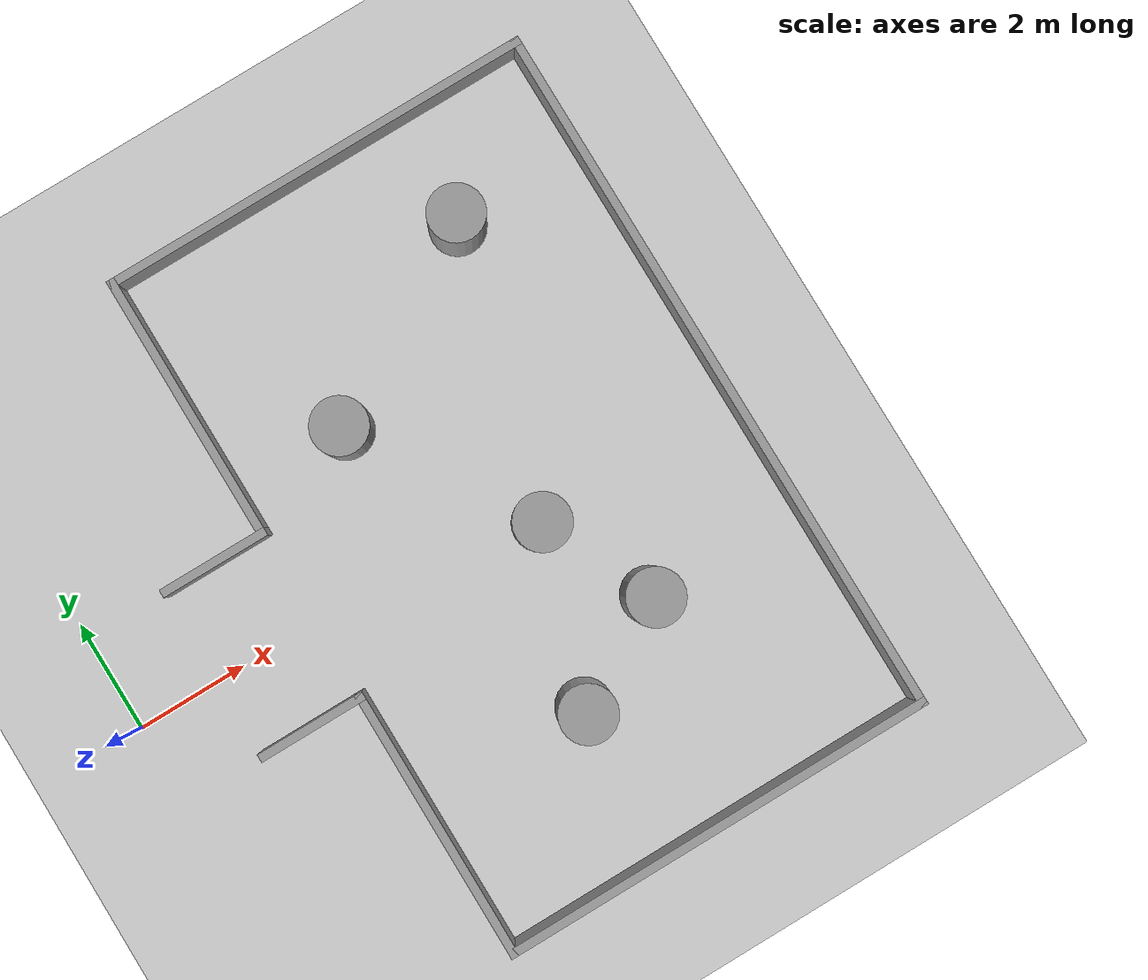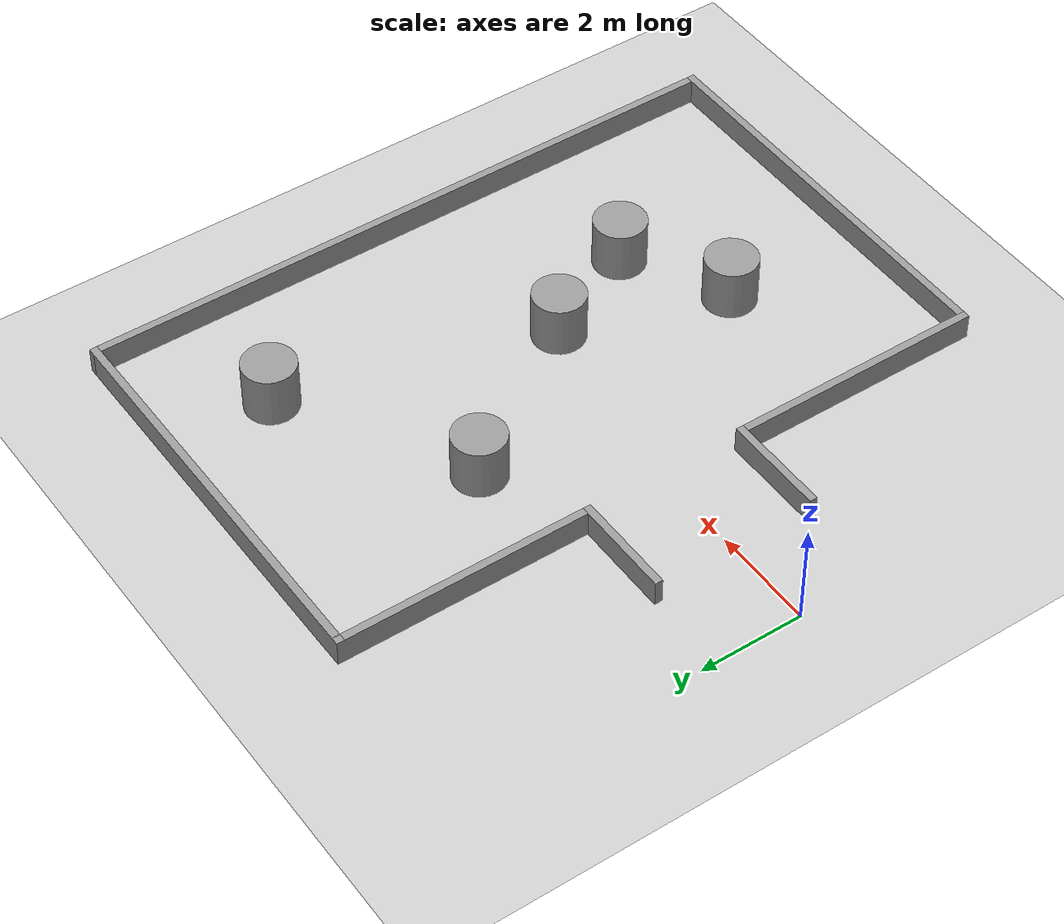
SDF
<sdf version="1.7">
 <world name="default">
  <light name="sun" type="directional">
   <pose>0 0 10 0 -0 0</pose>
   <diffuse>0.8 0.8 0.8 1</diffuse>
   <specular>0.2 0.2 0.2 1</specular>
   <attenuation>
    <range>1000</range>
    <constant>0.9</constant>
    <linear>0.01</linear>
    <quadratic>0.001</quadratic>
   </attenuation>
   <direction>-0.5 0.1 -0.9</direction>
   <spot><inner_angle>0</inner_angle><outer_angle>0</outer_angle><falloff>0</falloff></spot>
  </light>
  <model name="ground_plane">
   <static>1</static>
   <link name="link">
    <collision name="collision">
     <geometry><plane><normal>0 0 1</normal><size>100 100</size></plane></geometry>
     <surface>
      <contact><collide_bitmask>65535</collide_bitmask></contact>
      <friction><ode><mu>100</mu><mu2>50</mu2></ode></friction>
     </surface>
    </collision>
    <visual name="visual">
     <cast_shadows>0</cast_shadows>
     <geometry><plane><normal>0 0 1</normal><size>100 100</size></plane></geometry>
     <material>
      <script><uri>file://media/materials/scripts/gazebo.material</uri><name>Gazebo/Grey</name></script>
     </material>
    </visual>
   </link>
  </model>
  <gravity>0 0 -9.8</gravity>
  <magnetic_field>6e-06 2.3e-05 -4.2e-05</magnetic_field>
  <atmosphere type="adiabatic"/>
  <physics type="ode">
   <max_step_size>0.001</max_step_size>
   <real_time_factor>1</real_time_factor>
   <real_time_update_rate>1000</real_time_update_rate>
  </physics>
  <scene><ambient>0.4 0.4 0.4 1</ambient><background>0.7 0.7 0.7 1</background><shadows>1</shadows></scene>
  <audio><device>default</device></audio>
  <spherical_coordinates>
   <surface_model>EARTH_WGS84</surface_model>
   <latitude_deg>0</latitude_deg>
   <longitude_deg>0</longitude_deg>
   <elevation>0</elevation>
   <heading_deg>0</heading_deg>
  </spherical_coordinates>
  <model name="simple_environment">
   <pose>5.695 0.129 0 0 -0 0</pose>
   <link name="Wall_10">
    <collision name="Wall_10_Collision">
     <geometry><box><size>8 0.15 0.5</size></box></geometry>
     <pose>0 0 0.25 0 -0 0</pose>
    </collision>
    <visual name="Wall_10_Visual">
     <pose>0 0 0.25 0 -0 0</pose>
     <geometry><box><size>8 0.15 0.5</size></box></geometry>
     <material>
      <script><uri>file://media/materials/scripts/gazebo.material</uri><name>Gazebo/Grey</name></script>
      <ambient>1 1 1 1</ambient>
     </material>
     <meta><layer>0</layer></meta>
    </visual>
    <pose>1.695 -6.425 0 0 -0 0</pose>
   </link>
   <link name="Wall_12">
    <collision name="Wall_12_Collision">
     <geometry><box><size>13 0.15 0.5</size></box></geometry>
     <pose>0 0 0.25 0 -0 0</pose>
    </collision>
    <visual name="Wall_12_Visual">
     <pose>0 0 0.25 0 -0 0</pose>
     <geometry><box><size>13 0.15 0.5</size></box></geometry>
     <material>
      <script><uri>file://media/materials/scripts/gazebo.material</uri><name>Gazebo/Grey</name></script>
      <ambient>1 1 1 1</ambient>
     </material>
     <meta><layer>0</layer></meta>
    </visual>
    <pose>5.62 -0 0 0 -0 1.5708</pose>
   </link>
   <link name="Wall_20">
    <collision name="Wall_20_Collision">
     <geometry><box><size>7.99956 0.15 0.5</size></box></geometry>
     <pose>0 0 0.25 0 -0 0</pose>
    </collision>
    <visual name="Wall_20_Visual">
     <pose>0 0 0.25 0 -0 0</pose>
     <geometry><box><size>7.99956 0.15 0.5</size></box></geometry>
     <material>
      <script><uri>file://media/materials/scripts/gazebo.material</uri><name>Gazebo/Grey</name></script>
      <ambient>1 1 1 1</ambient>
     </material>
     <meta><layer>0</layer></meta>
    </visual>
    <pose>1.695 6.425 0 0 -0 3.14159</pose>
   </link>
   <link name="Wall_21">
    <collision name="Wall_21_Collision">
     <geometry><box><size>5 0.15 0.5</size></box></geometry>
     <pose>0 0 0.25 0 -0 0</pose>
    </collision>
    <visual name="Wall_21_Visual">
     <pose>0 0 0.25 0 -0 0</pose>
     <geometry><box><size>5 0.15 0.5</size></box></geometry>
     <material>
      <script><uri>file://media/materials/scripts/gazebo.material</uri><name>Gazebo/Grey</name></script>
      <ambient>1 1 1 1</ambient>
     </material>
     <meta><layer>0</layer></meta>
    </visual>
    <pose>-2.23 4 0 0 -0 -1.5708</pose>
   </link>
   <link name="Wall_22">
    <collision name="Wall_22_Collision">
     <geometry><box><size>2.00043 0.15 0.5</size></box></geometry>
     <pose>0 0 0.25 0 -0 0</pose>
    </collision>
    <visual name="Wall_22_Visual">
     <pose>0 0 0.25 0 -0 0</pose>
     <geometry><box><size>2.00043 0.15 0.5</size></box></geometry>
     <material>
      <script><uri>file://media/materials/scripts/gazebo.material</uri><name>Gazebo/Grey</name></script>
      <ambient>1 1 1 1</ambient>
     </material>
     <meta><layer>0</layer></meta>
    </visual>
    <pose>-3.155 1.575 0 0 -0 3.14159</pose>
   </link>
   <link name="Wall_8">
    <collision name="Wall_8_Collision">
     <geometry><box><size>2 0.15 0.5</size></box></geometry>
     <pose>0 0 0.25 0 -0 0</pose>
    </collision>
    <visual name="Wall_8_Visual">
     <pose>0 0 0.25 0 -0 0</pose>
     <geometry><box><size>2 0.15 0.5</size></box></geometry>
     <material>
      <script><uri>file://media/materials/scripts/gazebo.material</uri><name>Gazebo/Grey</name></script>
      <ambient>1 1 1 1</ambient>
     </material>
     <meta><layer>0</layer></meta>
    </visual>
    <pose>-3.155 -1.575 0 0 -0 0</pose>
   </link>
   <link name="Wall_9">
    <collision name="Wall_9_Collision">
     <geometry><box><size>5 0.15 0.5</size></box></geometry>
     <pose>0 0 0.25 0 -0 0</pose>
    </collision>
    <visual name="Wall_9_Visual">
     <pose>0 0 0.25 0 -0 0</pose>
     <geometry><box><size>5 0.15 0.5</size></box></geometry>
     <material>
      <script><uri>file://media/materials/scripts/gazebo.material</uri><name>Gazebo/Grey</name></script>
      <ambient>1 1 1 1</ambient>
     </material>
     <meta><layer>0</layer></meta>
    </visual>
    <pose>-2.23 -4 0 0 -0 -1.5708</pose>
   </link>
   <static>1</static>
  </model>
  <model name="unit_cylinder">
   <pose>8.91277 4.48992 0.499992 -3e-06 -4e-06 -0</pose>
   <link name="link">
    <inertial>
     <mass>1</mass>
     <inertia><ixx>0.145833</ixx><ixy>0</ixy><ixz>0</ixz><iyy>0.145833</iyy><iyz>0</iyz><izz>0.125</izz></inertia>
    </inertial>
    <collision name="collision">
     <geometry><cylinder><radius>0.5</radius><length>1</length></cylinder></geometry>
    </collision>
    <visual name="visual">
     <geometry><cylinder><radius>0.5</radius><length>1</length></cylinder></geometry>
     <material>
      <script><name>Gazebo/Grey</name><uri>file://media/materials/scripts/gazebo.material</uri></script>
     </material>
    </visual>
   </link>
  </model>
  <model name="unit_cylinder_0">
   <pose>5.49903 2.49856 0.499993 -3e-06 -3e-06 0</pose>
   <link name="link">
    <inertial>
     <mass>1</mass>
     <inertia><ixx>0.145833</ixx><ixy>0</ixy><ixz>0</ixz><iyy>0.145833</iyy><iyz>0</iyz><izz>0.125</izz></inertia>
    </inertial>
    <collision name="collision">
     <geometry><cylinder><radius>0.5</radius><length>1</length></cylinder></geometry>
    </collision>
    <visual name="visual">
     <geometry><cylinder><radius>0.5</radius><length>1</length></cylinder></geometry>
     <material>
      <script><name>Gazebo/Grey</name><uri>file://media/materials/scripts/gazebo.material</uri></script>
     </material>
    </visual>
   </link>
  </model>
  <model name="unit_cylinder_1">
   <pose>7.50371 -0.530405 0.499997 3e-06 4e-06 -0</pose>
   <link name="link">
    <inertial>
     <mass>1</mass>
     <inertia><ixx>0.145833</ixx><ixy>0</ixy><ixz>0</ixz><iyy>0.145833</iyy><iyz>0</iyz><izz>0.125</izz></inertia>
    </inertial>
    <collision name="collision">
     <geometry><cylinder><radius>0.5</radius><length>1</length></cylinder></geometry>
    </collision>
    <visual name="visual">
     <geometry><cylinder><radius>0.5</radius><length>1</length></cylinder></geometry>
     <material>
      <script><name>Gazebo/Grey</name><uri>file://media/materials/scripts/gazebo.material</uri></script>
     </material>
    </visual>
   </link>
  </model>
  <model name="unit_cylinder_2">
   <pose>6.53106 -3.54532 0.499993 -3e-06 -4e-06 -0</pose>
   <link name="link">
    <inertial>
     <mass>1</mass>
     <inertia><ixx>0.145833</ixx><ixy>0</ixy><ixz>0</ixz><iyy>0.145833</iyy><iyz>0</iyz><izz>0.125</izz></inertia>
    </inertial>
    <collision name="collision">
     <geometry><cylinder><radius>0.5</radius><length>1</length></cylinder></geometry>
    </collision>
    <visual name="visual">
     <geometry><cylinder><radius>0.5</radius><length>1</length></cylinder></geometry>
     <material>
      <script><name>Gazebo/Grey</name><uri>file://media/materials/scripts/gazebo.material</uri></script>
     </material>
    </visual>
   </link>
  </model>
  <model name="unit_cylinder_3">
   <pose>8.43657 -2.51051 0.499997 3e-06 4e-06 -0</pose>
   <link name="link">
    <inertial>
     <mass>1</mass>
     <inertia><ixx>0.145833</ixx><ixy>0</ixy><ixz>0</ixz><iyy>0.145833</iyy><iyz>0</iyz><izz>0.125</izz></inertia>
    </inertial>
    <collision name="collision">
     <geometry><cylinder><radius>0.5</radius><length>1</length></cylinder></geometry>
    </collision>
    <visual name="visual">
     <geometry><cylinder><radius>0.5</radius><length>1</length></cylinder></geometry>
     <material>
      <script><name>Gazebo/Grey</name><uri>file://media/materials/scripts/gazebo.material</uri></script>
     </material>
    </visual>
   </link>
  </model>
 </world>
</sdf>
